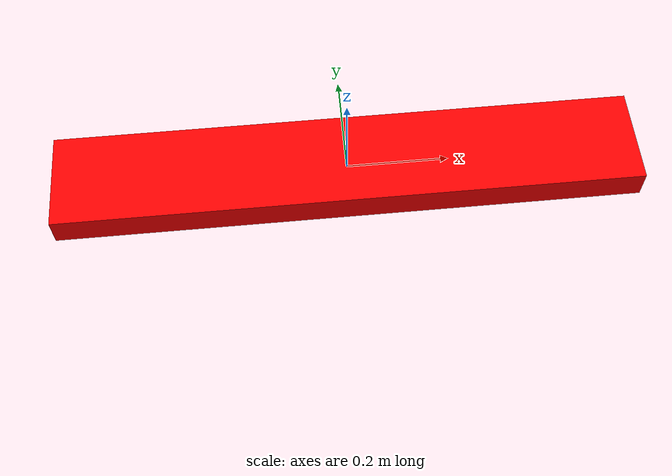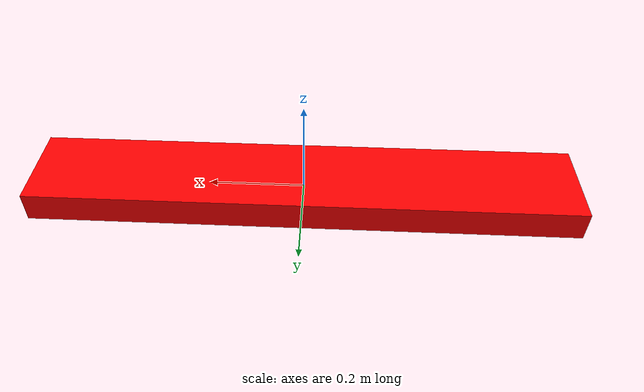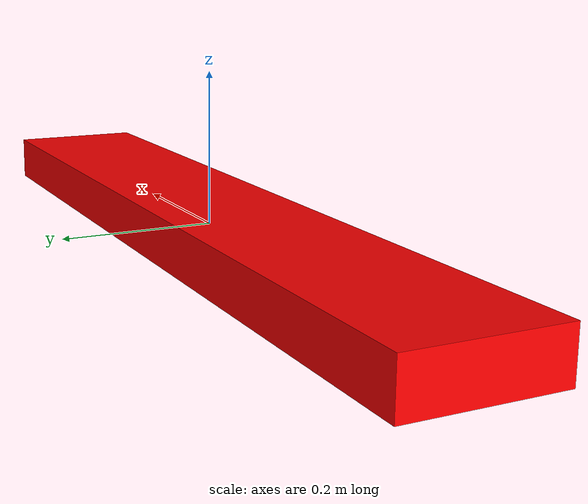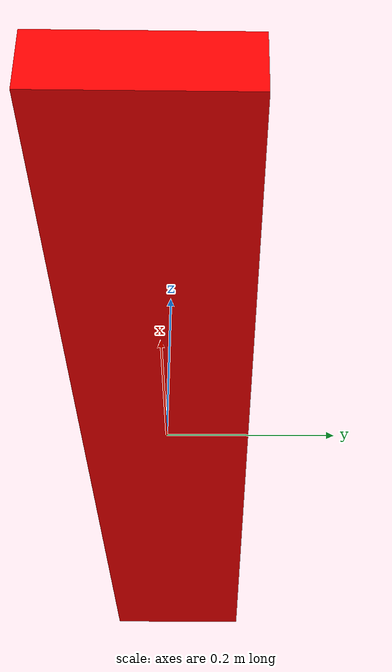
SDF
<?xml version='1.0'?>
<sdf version='1.6'>
  <model name='keva_plank'>
    <link name='link'>
      <inertial>
        <mass>9.67861</mass>
        <inertia>
          <ixx>0.0325221</ixx>
          <ixy>0</ixy>
          <ixz>0</ixz>
          <iyy>1.05697</iyy>
          <iyz>0</iyz>
          <izz>1.08299</izz>
        </inertia>
        <pose frame=''>0 0 0 0 -0 0</pose>
      </inertial>
      <self_collide>0</self_collide>
      <enable_wind>0</enable_wind>
      <kinematic>0</kinematic>
      <pose frame=''>0 0 0 0 -0 0</pose>
      <gravity>1</gravity>
      <visual name='visual'>
        <geometry>
          <box>
            <size>1.143 0.1905 0.0635</size>
          </box>
        </geometry>
        <material>
          <script>
            <name>Gazebo/Grey</name>
            <uri>file://media/materials/scripts/gazebo.material</uri>
          </script>
          <shader type='vertex'>
            <normal_map>__default__</normal_map>
          </shader>
          <ambient>1 0 0 1</ambient>
          <diffuse>1 0 0 1</diffuse>
          <specular>0.01 0.01 0.01 1</specular>
          <emissive>0 0 0 1</emissive>
        </material>
        <pose frame=''>0 0 0 0 -0 0</pose>
        <transparency>0</transparency>
        <cast_shadows>1</cast_shadows>
      </visual>
      <collision name='collision'>
        <laser_retro>0</laser_retro>
        <max_contacts>10</max_contacts>
        <pose frame=''>0 0 0 0 -0 0</pose>
        <geometry>
          <box>
            <size>1.143 0.1905 0.0635</size>
          </box>
        </geometry>
        <surface>
          <friction>
            <ode>
              <mu>100</mu>
              <mu2>50</mu2>
              <fdir1>0 0 0</fdir1>
              <slip1>0</slip1>
              <slip2>0</slip2>
            </ode>
            <torsional>
              <coefficient>1</coefficient>
              <patch_radius>0</patch_radius>
              <surface_radius>0</surface_radius>
              <use_patch_radius>1</use_patch_radius>
              <ode>
                <slip>0</slip>
              </ode>
            </torsional>
          </friction>
          <bounce>
            <restitution_coefficient>0.001</restitution_coefficient>
            <threshold>100000</threshold>
          </bounce>
          <contact>
            <collide_without_contact>0</collide_without_contact>
            <collide_without_contact_bitmask>1</collide_without_contact_bitmask>
            <collide_bitmask>1</collide_bitmask>
            <ode>
              <soft_cfm>0</soft_cfm>
              <soft_erp>0.2</soft_erp>
              <kp>1e+13</kp>
              <kd>1</kd>
              <max_vel>10</max_vel>
              <min_depth>0</min_depth>
            </ode>
            <bullet>
              <split_impulse>1</split_impulse>
              <split_impulse_penetration_threshold>-0.01</split_impulse_penetration_threshold>
              <soft_cfm>0</soft_cfm>
              <soft_erp>0.2</soft_erp>
              <kp>1e+13</kp>
              <kd>1</kd>
            </bullet>
          </contact>
        </surface>
      </collision>
    </link>
    <static>0</static>
    <allow_auto_disable>1</allow_auto_disable>
  </model>
</sdf>
